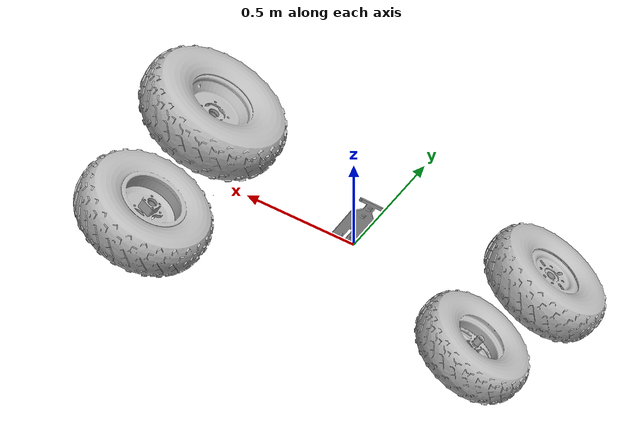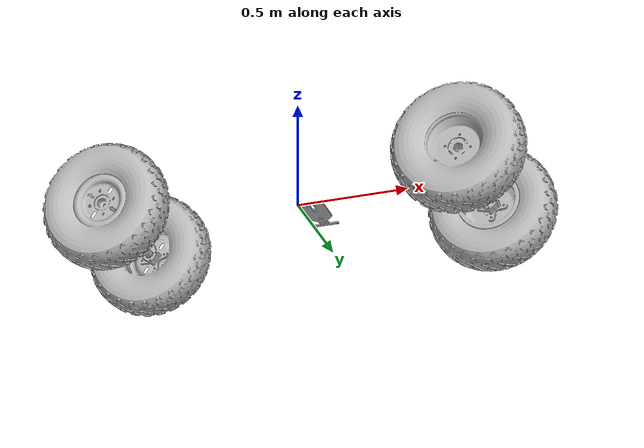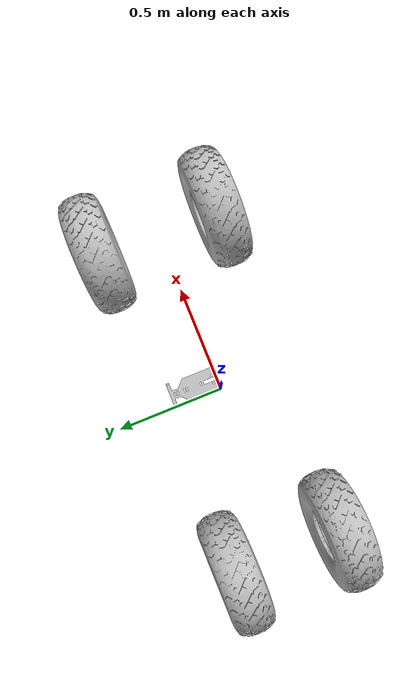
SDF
<sdf version='1.7'>
  <model name='vehicle'>
    <link name='base_link'>
      <inertial>
        <pose>0 0 0 0 -0 0</pose>
        <mass>10</mass>
        <inertia>
          <ixx>1</ixx>
          <ixy>0</ixy>
          <ixz>0</ixz>
          <iyy>1</iyy>
          <iyz>0</iyz>
          <izz>1</izz>
        </inertia>
      </inertial>
      <collision name='base_link_collision'>
        <pose>0 0 0 0 -0 0</pose>
        <geometry>
          <mesh>
            <scale>1 1 1</scale>
            <uri>model://vehicle/meshes/base_link.STL</uri>
          </mesh>
        </geometry>
      </collision>
      <visual name='base_link_visual'>
        <pose>0 0 0 0 -0 0</pose>
        <geometry>
          <mesh>
            <scale>1 1 1</scale>
            <uri>model://vehicle/meshes/base_link.STL</uri>
          </mesh>
        </geometry>
      </visual>
    </link>
    <joint name='JTBKL' type='revolute'>
      <pose relative_to='base_link'>-0.8 0.3 0 0 -0 0</pose>
      <parent>base_link</parent>
      <child>BKL</child>
      <axis>
        <xyz>0 1 0</xyz>
        <limit>
          <lower>-1e+16</lower>
          <upper>1e+16</upper>
        </limit>
        <dynamics>
          <spring_reference>0</spring_reference>
          <spring_stiffness>0</spring_stiffness>
        </dynamics>
      </axis>
    </joint>
    <link name='BKL'>
      <pose relative_to='JTBKL'>0 0 0 0 -0 0</pose>
      <inertial>
        <pose>0 0 0 0 -0 0</pose>
        <mass>6</mass>
        <inertia>
          <ixx>0.6</ixx>
          <ixy>0</ixy>
          <ixz>0</ixz>
          <iyy>0.6</iyy>
          <iyz>0</iyz>
          <izz>0.6</izz>
        </inertia>
      </inertial>
      <collision name='BKL_collision'>
        <pose>0 0 0 0 -0 0</pose>
        <geometry>
          <mesh>
            <scale>1 1 1</scale>
            <uri>model://vehicle/meshes/BKL.STL</uri>
          </mesh>
        </geometry>
      </collision>
      <visual name='BKL_visual'>
        <pose>0 0 0 0 -0 0</pose>
        <geometry>
          <mesh>
            <scale>1 1 1</scale>
            <uri>model://vehicle/meshes/BKL.STL</uri>
          </mesh>
        </geometry>
      </visual>
    </link>
    <joint name='JTBKR' type='revolute'>
      <pose relative_to='base_link'>-0.8 -0.3 0 0 -0 0</pose>
      <parent>base_link</parent>
      <child>BKR</child>
      <axis>
        <xyz>0 1 0</xyz>
        <limit>
          <lower>-1e+16</lower>
          <upper>1e+16</upper>
        </limit>
        <dynamics>
          <spring_reference>0</spring_reference>
          <spring_stiffness>0</spring_stiffness>
        </dynamics>
      </axis>
    </joint>
    <link name='BKR'>
      <pose relative_to='JTBKR'>0 0 0 0 -0 0</pose>
      <inertial>
        <pose>0 0 0 0 -0 0</pose>
        <mass>6</mass>
        <inertia>
          <ixx>0.6</ixx>
          <ixy>0</ixy>
          <ixz>0</ixz>
          <iyy>0.6</iyy>
          <iyz>0</iyz>
          <izz>0.6</izz>
        </inertia>
      </inertial>
      <collision name='BKR_collision'>
        <pose>0 0 0 0 -0 0</pose>
        <geometry>
          <mesh>
            <scale>1 1 1</scale>
            <uri>model://vehicle/meshes/BKR.STL</uri>
          </mesh>
        </geometry>
      </collision>
      <visual name='BKR_visual'>
        <pose>0 0 0 0 -0 0</pose>
        <geometry>
          <mesh>
            <scale>1 1 1</scale>
            <uri>model://vehicle/meshes/BKR.STL</uri>
          </mesh>
        </geometry>
      </visual>
    </link>
    <joint name='JTFRL' type='revolute'>
      <pose relative_to='base_link'>0.8 0.3 0 0 -0 0</pose>
      <parent>base_link</parent>
      <child>FRL</child>
      <axis>
        <xyz>0 1 0</xyz>
        <limit>
          <lower>0</lower>
          <upper>0</upper>
          <effort>10</effort>
          <velocity>10</velocity>
        </limit>
        <dynamics>
          <spring_reference>0</spring_reference>
          <spring_stiffness>0</spring_stiffness>
        </dynamics>
      </axis>
    </joint>
    <link name='FRL'>
      <pose relative_to='JTFRL'>0 0 0 0 -0 0</pose>
      <inertial>
        <pose>0 0 0 0 -0 0</pose>
        <mass>5</mass>
        <inertia>
          <ixx>0.5</ixx>
          <ixy>0</ixy>
          <ixz>0</ixz>
          <iyy>0.5</iyy>
          <iyz>0</iyz>
          <izz>0.5</izz>
        </inertia>
      </inertial>
      <collision name='FRL_collision'>
        <pose>0 0 0 0 -0 0</pose>
        <geometry>
          <mesh>
            <scale>1 1 1</scale>
            <uri>model://vehicle/meshes/FRL.STL</uri>
          </mesh>
        </geometry>
      </collision>
      <visual name='FRL_visual'>
        <pose>0 0 0 0 -0 0</pose>
        <geometry>
          <mesh>
            <scale>1 1 1</scale>
            <uri>model://vehicle/meshes/FRL.STL</uri>
          </mesh>
        </geometry>
      </visual>
    </link>
    <joint name='JTFRR' type='revolute'>
      <pose relative_to='base_link'>0.8 -0.3 0 0 -0 0</pose>
      <parent>base_link</parent>
      <child>FRR</child>
      <axis>
        <xyz>0 1 0</xyz>
        <limit>
          <lower>0</lower>
          <upper>0</upper>
          <effort>10</effort>
          <velocity>10</velocity>
        </limit>
        <dynamics>
          <spring_reference>0</spring_reference>
          <spring_stiffness>0</spring_stiffness>
        </dynamics>
      </axis>
    </joint>
    <link name='FRR'>
      <pose relative_to='JTFRR'>0 0 0 0 -0 0</pose>
      <inertial>
        <pose>0 0 0 0 -0 0</pose>
        <mass>5</mass>
        <inertia>
          <ixx>0.5</ixx>
          <ixy>0</ixy>
          <ixz>0</ixz>
          <iyy>0.5</iyy>
          <iyz>0</iyz>
          <izz>0.5</izz>
        </inertia>
      </inertial>
      <collision name='FRR_collision'>
        <pose>0 0 0 0 -0 0</pose>
        <geometry>
          <mesh>
            <scale>1 1 1</scale>
            <uri>model://vehicle/meshes/FRR.STL</uri>
          </mesh>
        </geometry>
      </collision>
      <visual name='FRR_visual'>
        <pose>0 0 0 0 -0 0</pose>
        <geometry>
          <mesh>
            <scale>1 1 1</scale>
            <uri>model://vehicle/meshes/FRR.STL</uri>
          </mesh>
        </geometry>
      </visual>
    </link>
  </model>
</sdf>
